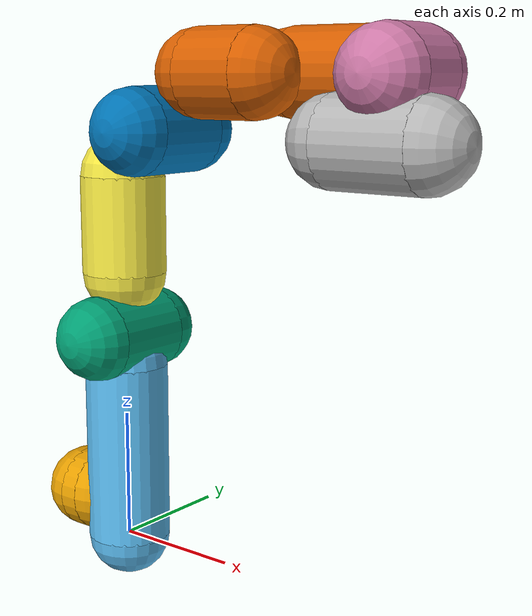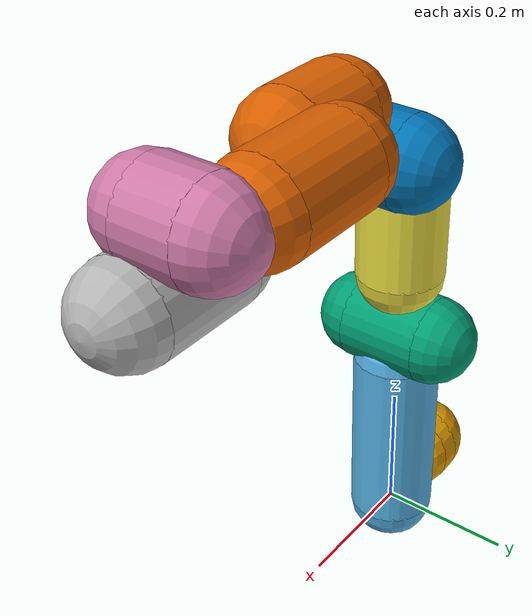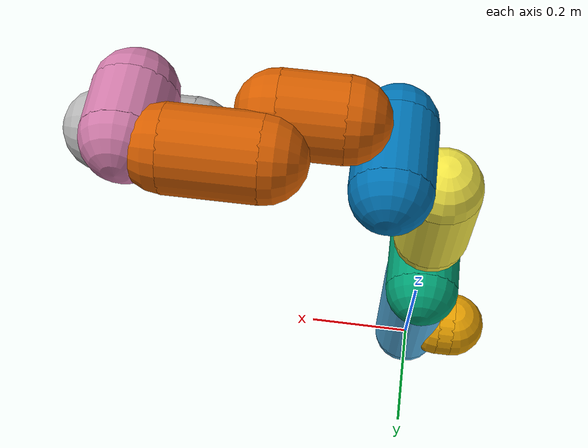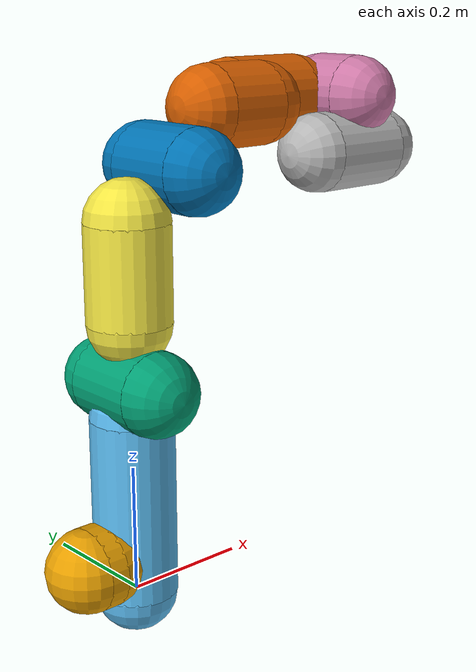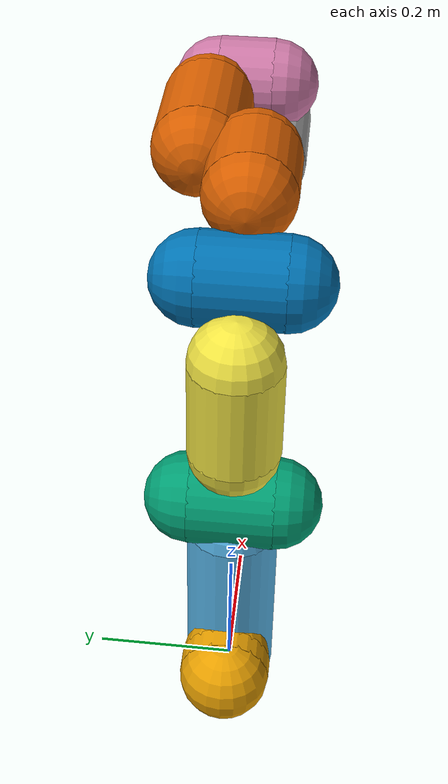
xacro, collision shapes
<?xml version="1.0" ?>
<!-- |    This document was autogenerated by xacro from /opt/ros/noetic/share/franka_description/robots/panda/panda.urdf.xacro | -->
<!-- |    EDITING THIS FILE BY HAND IS NOT RECOMMENDED                                 | -->
<robot xmlns:xacro="http://wiki.ros.org/xacro" name="panda">

      <!-- prefix -->
      <xacro:arg name="prefix" default=""/>

      <!-- sub-link defining detailed meshes for collision with environment -->
      <link name="$(arg prefix)panda_link0">
        <visual>
          <geometry>
            <mesh filename="package://franka_description/meshes/visual/link0.dae"/>
          </geometry>
        </visual>
        <collision>
          <origin rpy="0 1.5707963267948966 0" xyz="-0.075 0 0.06"/>
          <geometry>
            <cylinder length="0.03" radius="0.065"/>
          </geometry>
        </collision>
        <collision>
          <origin xyz="-0.06 0 0.06"/>
          <geometry>
            <sphere radius="0.065"/>
          </geometry>
        </collision>
        <collision>
          <origin xyz="-0.09 0 0.06"/>
          <geometry>
            <sphere radius="0.065"/>
          </geometry>
        </collision>
      </link>
      <!-- sub-link defining detailed meshes for collision with environment -->
      <link name="$(arg prefix)panda_link1">
        <visual>
          <geometry>
            <mesh filename="package://franka_description/meshes/visual/link1.dae"/>
          </geometry>
        </visual>
        <collision>
          <origin rpy="0 0 0" xyz="0 0 -0.1915"/>
          <geometry>
            <cylinder length="0.283" radius="0.065"/>
          </geometry>
        </collision>
        <collision>
          <origin xyz="0 0 -0.05000000000000002"/>
          <geometry>
            <sphere radius="0.065"/>
          </geometry>
        </collision>
        <collision>
          <origin xyz="0 0 -0.33299999999999996"/>
          <geometry>
            <sphere radius="0.065"/>
          </geometry>
        </collision>
      </link>
      <joint name="$(arg prefix)panda_joint1" type="revolute">
        <origin rpy="0 0 0" xyz="0 0 0.333"/>
        <parent link="$(arg prefix)panda_link0"/>
        <child link="$(arg prefix)panda_link1"/>
        <axis xyz="0 0 1"/>
        <limit effort="87.0" lower="-2.8973" upper="2.8973" velocity="2.175"/>
        <safety_controller k_position="100.0" k_velocity="40.0" soft_lower_limit="-2.8973" soft_upper_limit="2.8973"/>
        <dynamics D="1" K="7000" damping="0.003" friction="0.0" mu_coulomb="0" mu_viscous="16"/>
      </joint>
      <!-- sub-link defining detailed meshes for collision with environment -->
      <link name="$(arg prefix)panda_link2">
        <visual>
          <geometry>
            <mesh filename="package://franka_description/meshes/visual/link2.dae"/>
          </geometry>
        </visual>
        <collision>
          <origin rpy="0 0 0" xyz="0 0 0"/>
          <geometry>
            <cylinder length="0.12" radius="0.065"/>
          </geometry>
        </collision>
        <collision>
          <origin xyz="0 0 0.06"/>
          <geometry>
            <sphere radius="0.065"/>
          </geometry>
        </collision>
        <collision>
          <origin xyz="0 0 -0.06"/>
          <geometry>
            <sphere radius="0.065"/>
          </geometry>
        </collision>
      </link>
      <joint name="$(arg prefix)panda_joint2" type="revolute">
        <origin rpy="-1.5707963267948966 0 0" xyz="0 0 0"/>
        <parent link="$(arg prefix)panda_link1"/>
        <child link="$(arg prefix)panda_link2"/>
        <axis xyz="0 0 1"/>
        <limit effort="87.0" lower="-1.7628" upper="1.7628" velocity="2.175"/>
        <safety_controller k_position="100.0" k_velocity="40.0" soft_lower_limit="-1.7628" soft_upper_limit="1.7628"/>
        <dynamics D="1" K="7000" damping="0.003" friction="0.0" mu_coulomb="0" mu_viscous="16"/>
      </joint>
      <!-- sub-link defining detailed meshes for collision with environment -->
      <link name="$(arg prefix)panda_link3">
        <visual>
          <geometry>
            <mesh filename="package://franka_description/meshes/visual/link3.dae"/>
          </geometry>
        </visual>
        <collision>
          <origin rpy="0 0 0" xyz="0 0 -0.145"/>
          <geometry>
            <cylinder length="0.15" radius="0.065"/>
          </geometry>
        </collision>
        <collision>
          <origin xyz="0 0 -0.06999999999999999"/>
          <geometry>
            <sphere radius="0.065"/>
          </geometry>
        </collision>
        <collision>
          <origin xyz="0 0 -0.21999999999999997"/>
          <geometry>
            <sphere radius="0.065"/>
          </geometry>
        </collision>
      </link>
      <joint name="$(arg prefix)panda_joint3" type="revolute">
        <origin rpy="1.5707963267948966 0 0" xyz="0 -0.316 0"/>
        <parent link="$(arg prefix)panda_link2"/>
        <child link="$(arg prefix)panda_link3"/>
        <axis xyz="0 0 1"/>
        <limit effort="87.0" lower="-2.8973" upper="2.8973" velocity="2.175"/>
        <safety_controller k_position="100.0" k_velocity="40.0" soft_lower_limit="-2.8973" soft_upper_limit="2.8973"/>
        <dynamics D="1" K="7000" damping="0.003" friction="0.0" mu_coulomb="0" mu_viscous="16"/>
      </joint>
      <!-- sub-link defining detailed meshes for collision with environment -->
      <link name="$(arg prefix)panda_link4">
        <visual>
          <geometry>
            <mesh filename="package://franka_description/meshes/visual/link4.dae"/>
          </geometry>
        </visual>
        <collision>
          <origin rpy="0 0 0" xyz="0 0 0"/>
          <geometry>
            <cylinder length="0.12" radius="0.065"/>
          </geometry>
        </collision>
        <collision>
          <origin xyz="0 0 0.06"/>
          <geometry>
            <sphere radius="0.065"/>
          </geometry>
        </collision>
        <collision>
          <origin xyz="0 0 -0.06"/>
          <geometry>
            <sphere radius="0.065"/>
          </geometry>
        </collision>
      </link>
      <joint name="$(arg prefix)panda_joint4" type="revolute">
        <origin rpy="1.5707963267948966 0 0" xyz="0.0825 0 0"/>
        <parent link="$(arg prefix)panda_link3"/>
        <child link="$(arg prefix)panda_link4"/>
        <axis xyz="0 0 1"/>
        <limit effort="87.0" lower="-3.0718" upper="-0.0698" velocity="2.175"/>
        <safety_controller k_position="100.0" k_velocity="40.0" soft_lower_limit="-3.0718" soft_upper_limit="-0.0698"/>
        <dynamics D="1" K="7000" damping="0.003" friction="0.0" mu_coulomb="0" mu_viscous="16"/>
      </joint>
      <!-- sub-link defining detailed meshes for collision with environment -->
      <link name="$(arg prefix)panda_link5">
        <visual>
          <geometry>
            <mesh filename="package://franka_description/meshes/visual/link5.dae"/>
          </geometry>
        </visual>
        <collision>
          <origin rpy="0 0 0" xyz="0 0 -0.26"/>
          <geometry>
            <cylinder length="0.1" radius="0.065"/>
          </geometry>
        </collision>
        <collision>
          <origin xyz="0 0 -0.21000000000000002"/>
          <geometry>
            <sphere radius="0.065"/>
          </geometry>
        </collision>
        <collision>
          <origin xyz="0 0 -0.31"/>
          <geometry>
            <sphere radius="0.065"/>
          </geometry>
        </collision>
        <collision>
          <origin rpy="0 0 0.08" xyz="0 0.08 -0.13"/>
          <geometry>
            <cylinder length="0.14" radius="0.0655"/>
          </geometry>
        </collision>
        <collision>
          <origin xyz="0 0.08 -0.06"/>
          <geometry>
            <sphere radius="0.0655"/>
          </geometry>
        </collision>
        <collision>
          <origin xyz="0 0.08 -0.2"/>
          <geometry>
            <sphere radius="0.0655"/>
          </geometry>
        </collision>
      </link>
      <joint name="$(arg prefix)panda_joint5" type="revolute">
        <origin rpy="-1.5707963267948966 0 0" xyz="-0.0825 0.384 0"/>
        <parent link="$(arg prefix)panda_link4"/>
        <child link="$(arg prefix)panda_link5"/>
        <axis xyz="0 0 1"/>
        <limit effort="12.0" lower="-2.8973" upper="2.8973" velocity="2.61"/>
        <safety_controller k_position="100.0" k_velocity="40.0" soft_lower_limit="-2.8973" soft_upper_limit="2.8973"/>
        <dynamics D="1" K="7000" damping="0.003" friction="0.0" mu_coulomb="0" mu_viscous="16"/>
      </joint>
      <!-- sub-link defining detailed meshes for collision with environment -->
      <link name="$(arg prefix)panda_link6">
        <visual>
          <geometry>
            <mesh filename="package://franka_description/meshes/visual/link6.dae"/>
          </geometry>
        </visual>
        <collision>
          <origin rpy="0 0 0" xyz="0 0 -0.03"/>
          <geometry>
            <cylinder length="0.08" radius="0.065"/>
          </geometry>
        </collision>
        <collision>
          <origin xyz="0 0 0.010000000000000002"/>
          <geometry>
            <sphere radius="0.065"/>
          </geometry>
        </collision>
        <collision>
          <origin xyz="0 0 -0.07"/>
          <geometry>
            <sphere radius="0.065"/>
          </geometry>
        </collision>
      </link>
      <joint name="$(arg prefix)panda_joint6" type="revolute">
        <origin rpy="1.5707963267948966 0 0" xyz="0 0 0"/>
        <parent link="$(arg prefix)panda_link5"/>
        <child link="$(arg prefix)panda_link6"/>
        <axis xyz="0 0 1"/>
        <limit effort="12.0" lower="-0.0175" upper="3.7525" velocity="2.61"/>
        <safety_controller k_position="100.0" k_velocity="40.0" soft_lower_limit="-0.0175" soft_upper_limit="3.7525"/>
        <dynamics D="1" K="7000" damping="0.003" friction="0.0" mu_coulomb="0" mu_viscous="16"/>
      </joint>
      <!-- sub-link defining detailed meshes for collision with environment -->
      <link name="$(arg prefix)panda_link7">
        <visual>
          <geometry>
            <mesh filename="package://franka_description/meshes/visual/link7.dae"/>
          </geometry>
        </visual>
        <collision>
          <origin rpy="0 0 0" xyz="0 0 0.01"/>
          <geometry>
            <cylinder length="0.14" radius="0.065"/>
          </geometry>
        </collision>
        <collision>
          <origin xyz="0 0 0.08"/>
          <geometry>
            <sphere radius="0.065"/>
          </geometry>
        </collision>
        <collision>
          <origin xyz="0 0 -0.060000000000000005"/>
          <geometry>
            <sphere radius="0.065"/>
          </geometry>
        </collision>
      </link>
      <joint name="$(arg prefix)panda_joint7" type="revolute">
        <origin rpy="1.5707963267948966 0 0" xyz="0.088 0 0"/>
        <parent link="$(arg prefix)panda_link6"/>
        <child link="$(arg prefix)panda_link7"/>
        <axis xyz="0 0 1"/>
        <limit effort="12.0" lower="-2.8973" upper="2.8973" velocity="2.61"/>
        <safety_controller k_position="100.0" k_velocity="40.0" soft_lower_limit="-2.8973" soft_upper_limit="2.8973"/>
        <dynamics D="1" K="7000" damping="0.003" friction="0.0" mu_coulomb="0" mu_viscous="16"/>
      </joint>
      <link name="$(arg prefix)panda_link8"/>
      <joint name="$(arg prefix)panda_joint8" type="fixed">
        <origin rpy="0 0 0" xyz="0 0 0.107"/>
        <parent link="$(arg prefix)panda_link7"/>
        <child link="$(arg prefix)panda_link8"/>
      </joint>

</robot>
